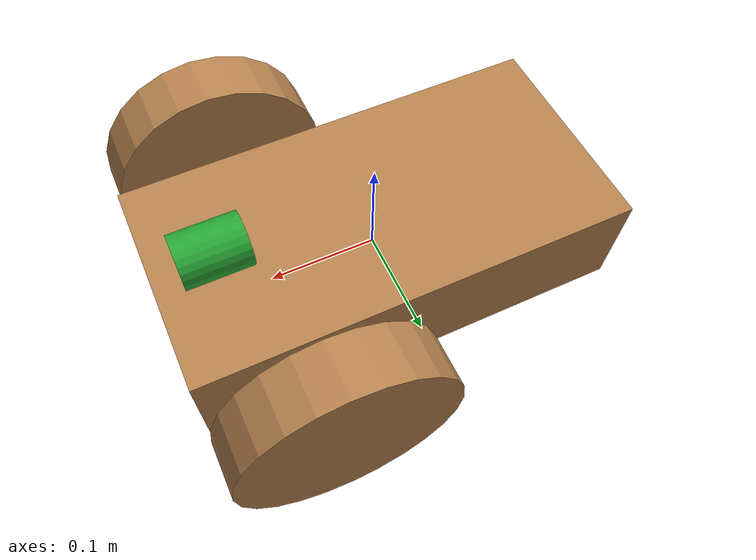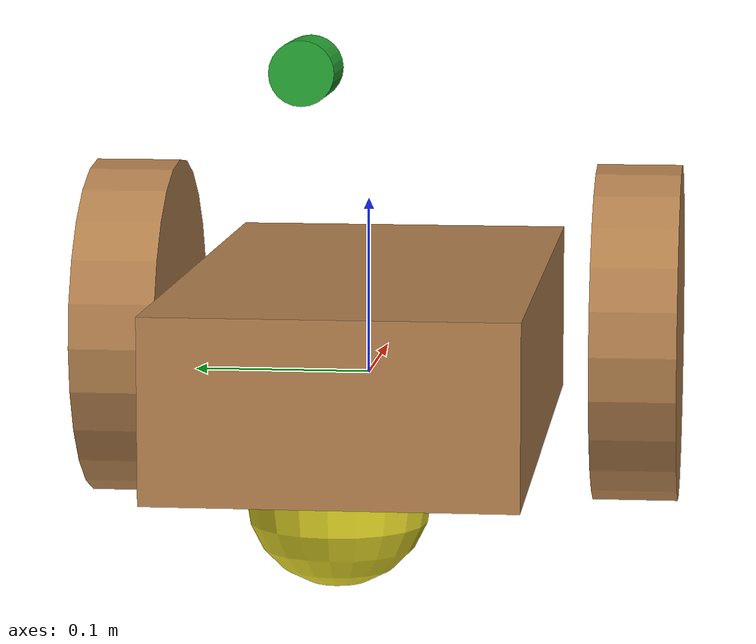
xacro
<?xml version='1.0'?>

<robot name="myrobot" xmlns:xacro="http://www.ros.org/wiki/xacro">

  <xacro:include filename="$(find rsk_bot)/urdf/stereo_bot/stereo_bot.gazebo.xacro" />
  <xacro:include filename="$(find rsk_bot)/urdf/common_properties.xacro" />

  <xacro:property name="chassis_x" value="0.4"/>
  <xacro:property name="chassis_y" value="0.2"/>
  <xacro:property name="chassis_z" value="0.1"/>
  <xacro:property name="chassis_mass" value="10"/>

  <xacro:property name="wheel_length" value="0.05"/>
  <xacro:property name="wheel_radius" value="0.1"/>
  <xacro:property name="wheel_mass" value="5"/>

  <xacro:property name="cameraRadius" value="0.02"/>
  <xacro:property name="cameraLength" value="0.05"/>
  <xacro:property name="cameraMass" value="0.1"/>

  <link name="base_footprint"/>

  <joint name="base_joint" type="fixed">
    <parent link="base_footprint"/>
    <child link="base_link"/>
    <origin xyz="0.0 0.0 0.010" rpy="0 0 0"/>
  </joint>

  <link name='base_link'>

    <visual>
      <origin xyz="0 0 0" rpy=" 0 0 0"/>
      <geometry>
        <box size="${chassis_x} ${chassis_y} ${chassis_z}"/>
      </geometry>
    </visual>

    <collision>
      <geometry>
        <box size="${chassis_x} ${chassis_y} ${chassis_z}"/>
      </geometry>
    </collision>

    <inertial>
      <origin xyz="0 0 0.1" rpy=" 0 0 0"/>
      <mass value="${chassis_mass}"/>
      <inertia ixx="${0.0833333 * chassis_mass * (chassis_y*chassis_y + chassis_z*chassis_z)}" ixy="0.0" ixz="0.0"
        iyy="${0.0833333 * chassis_mass * (chassis_x*chassis_x + chassis_z*chassis_z)}" iyz="0.0"
        izz="${0.0833333 * chassis_mass * (chassis_x*chassis_x + chassis_y*chassis_y)}" />
    </inertial>

  </link>

  <joint name="caster_joint" type="fixed">
    <parent link="base_link"/>
    <child link="caster_link"/>
    <origin xyz="-0.15 0 -0.05" rpy="0 0 0"/>
  </joint>

  <link name='caster_link'>

    <visual>
      <origin xyz="0 0 0" rpy=" 0 0 0"/>
      <geometry>
        <sphere radius="0.05"/>
      </geometry>
    </visual>

    <collision>
      <origin xyz="0 0 0" rpy=" 0 0 0"/>
      <geometry>
        <sphere radius="0.05"/>
      </geometry>
      <surface>   <!--Defines the surface property-->
        <friction>
          <ode>
            <mu>0</mu>
            <mu2>0</mu2>
            <slip1>1.0</slip1>
            <slip2>1.0</slip2>
          </ode>
        </friction>
      </surface>
    </collision>

  </link>

  <joint type="continuous" name="wheel_left_joint">
    <origin xyz="0.1 0.15 0" rpy="0 0 0"/>
    <child link="left_wheel"/>
    <parent link="base_link"/>
    <axis xyz="0 1 0" rpy="0 0 0"/>
    <limit effort="100" velocity="100"/>
    <joint_properties damping="0.0" friction="0.0"/>
  </joint>

  <link name="left_wheel">
    <!--origin xyz="0.1 0.13 0.1" rpy="0 1.5707 1.5707"/-->
    <visual name="left_wheel_visual">
      <origin xyz="0 0 0" rpy="0 1.5707 1.5707"/>
      <geometry>
        <cylinder radius="${wheel_radius}" length="${wheel_length}"/>
      </geometry>
    </visual>

    <collision name="collision">
      <origin xyz="0 0 0" rpy="0 1.5707 1.5707"/>
      <geometry>
        <cylinder radius="${wheel_radius}" length="${wheel_length}"/>
      </geometry>
    </collision>

    <inertial>
      <origin xyz="0 0 0" rpy="0 1.5707 1.5707"/>
      <mass value="${wheel_mass}"/>
      <cylinder_inertia m="${wheel_mass}" r="${wheel_radius}" h="${wheel_length}"/>
      <inertia ixx="${0.0833333 * wheel_mass * (3 * wheel_radius * wheel_radius + wheel_length * wheel_length)}" ixy="0.0" ixz="0.0"
        iyy="${0.0833333 * wheel_mass * (3 * wheel_radius * wheel_radius + wheel_length * wheel_length)}" iyz="0.0"
        izz="${0.5 * wheel_mass * wheel_radius * wheel_radius}" />
    </inertial>
  </link>

  <joint type="continuous" name="wheel_right_joint">
    <origin xyz="0.1 -0.15 0" rpy="0 0 0"/>
    <child link="right_wheel"/>
    <parent link="base_link"/>
    <axis xyz="0 1 0" rpy="0 0 0"/>
    <limit effort="100" velocity="100"/>
    <joint_properties damping="0.0" friction="0.0"/>
  </joint>

  <link name="right_wheel">
    <!--origin xyz="0.1 -0.13 0.1" rpy="0 1.5707 1.5707"/-->
    <visual name="right_wheel_visual">
      <origin xyz="0 0 0" rpy="0 1.5707 1.5707"/>
      <geometry>
        <cylinder radius="${wheel_radius}" length="${wheel_length}"/>
      </geometry>
    </visual>

    <collision name="collision">
      <origin xyz="0 0 0" rpy="0 1.5707 1.5707"/>
      <geometry>
        <cylinder radius="${wheel_radius}" length="${wheel_length}"/>
      </geometry>
    </collision>

    <inertial>
      <origin xyz="0 0 0" rpy="0 1.5707 1.5707"/>
      <mass value="5"/>
      <cylinder_inertia m="${wheel_mass}" r="${wheel_radius}" h="${wheel_length}"/>
      <inertia ixx="${0.0833333 * wheel_mass * (3 * wheel_radius * wheel_radius + wheel_length * wheel_length)}" ixy="0.0" ixz="0.0"
        iyy="${0.0833333 * wheel_mass * (3 * wheel_radius * wheel_radius + wheel_length * wheel_length)}" iyz="0.0"
        izz="${0.5 * wheel_mass * wheel_radius * wheel_radius}" />
    </inertial>
  </link>

  <joint name="stereo_camera_joint" type="fixed">
    <origin xyz="0.15 0.055 0.15" rpy="0 0 0"/>
    <parent link="base_link"/>
    <child link="stereo_camera_link"/>
  </joint>

  <link name="stereo_camera_link">

    <visual>
      <origin xyz="0 0 0" rpy="0 ${pi/2} 0"/>
      <geometry>
        <cylinder radius="${cameraRadius}" length="${cameraLength}"/>
      </geometry>
      <material name="green"/>
    </visual>

    <collision>
      <origin xyz="0 0 0" rpy="0 ${-pi/2} 0"/>
      <geometry>
        <cylinder radius="${cameraRadius}" length="${cameraLength}"/>
      </geometry>
    </collision>

    <inertial>
      <mass value="${cameraMass}" />
      <origin xyz="0 0 0" rpy="0 ${-pi/2} 0"/>
      <inertia ixx="1e-6" ixy="0" ixz="0" iyy="1e-6" iyz="0" izz="1e-6" />
    </inertial>

  </link>

   <joint name="stereo_camera_optical_joint" type="fixed">
    <origin xyz="0 0 0" rpy="${-pi/2} 0 ${-pi/2}"/>
    <parent link="stereo_camera_link"/>
    <child link="stereo_camera_optical_link"/>
  </joint>

  <link name="stereo_camera_optical_link"/>

</robot>
